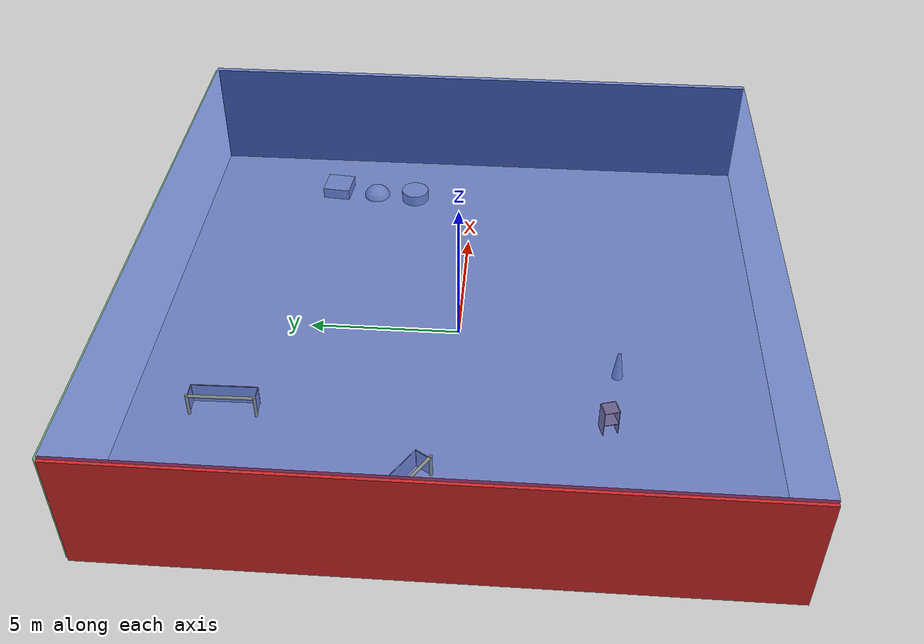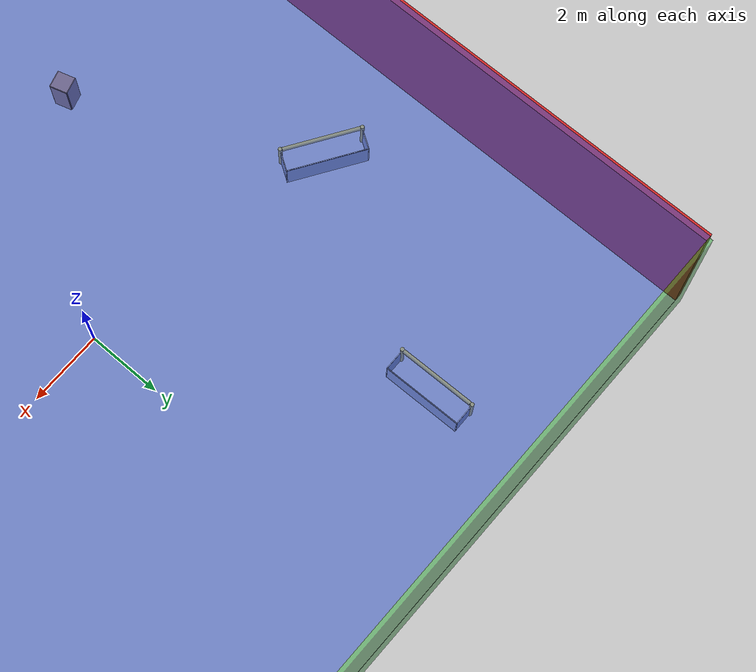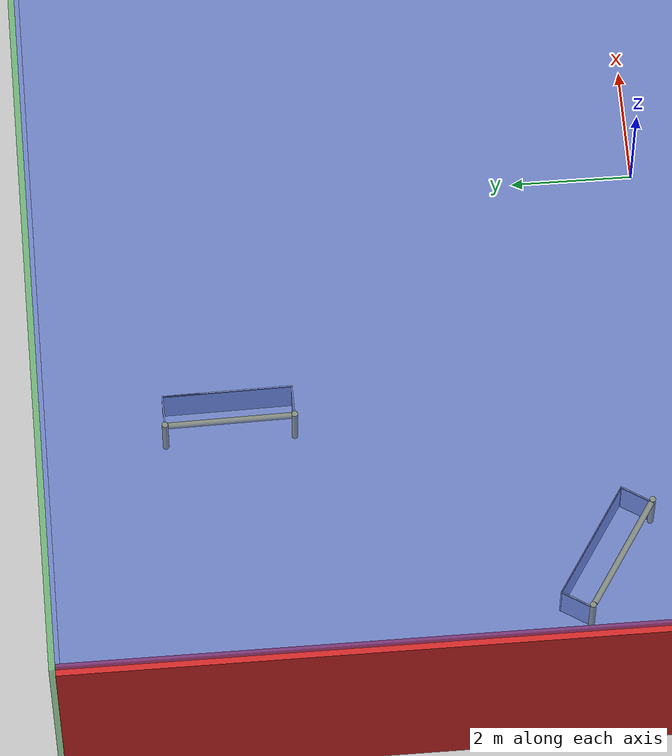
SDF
<sdf version="1.4">
 <world name="default">
  <physics type="ode">
   <max_step_size>0.001</max_step_size>
   <real_time_factor>1</real_time_factor>
   <real_time_update_rate>1000</real_time_update_rate>
   <gravity>0 0 -9.8</gravity>
  </physics>
  <scene><ambient>0.4 0.4 0.4 1</ambient><background>0.7 0.7 0.7 1</background><shadows>1</shadows></scene>
  <model name="Surrounding">
   <static>1</static>
   <link name="Ceiling">
    <collision name="Ceiling_Collision"><geometry><box><size>20 20 0.1</size></box></geometry></collision>
    <visual name="Ceiling_Visual">
     <geometry><box><size>20 20 0.1</size></box></geometry>
     <material>
      <script><uri>file://media/materials/scripts/gazebo.material</uri><name>Gazebo/BlueTransparent</name></script>
     </material>
    </visual>
    <pose>0 0 4.05 0 0 0</pose>
   </link>
   <link name="Wall_South">
    <collision name="Wall_South_Collision">
     <geometry><box><size>20 0 4</size></box></geometry>
     <pose>0 0 2 0 -0 0</pose>
    </collision>
    <visual name="Wall_South_Visual">
     <pose>0 0 2 0 -0 0</pose>
     <geometry><box><size>20 0 4</size></box></geometry>
     <material>
      <script><uri>file://media/materials/scripts/gazebo.material</uri><name>Gazebo/GreenTransparent</name></script>
     </material>
    </visual>
    <velocity_decay><linear>0</linear><angular>0</angular></velocity_decay>
    <pose>0 -10 0 0 -0 0</pose>
   </link>
   <link name="Wall_East">
    <collision name="Wall_21_Collision">
     <geometry><box><size>20 0 4</size></box></geometry>
     <pose>0 0 2 0 -0 0</pose>
    </collision>
    <visual name="Wall_21_Visual">
     <pose>0 0 2 0 -0 0</pose>
     <geometry><box><size>20 0 4</size></box></geometry>
     <material>
      <script><uri>file://media/materials/scripts/gazebo.material</uri><name>Gazebo/DarkGrey</name></script>
     </material>
    </visual>
    <velocity_decay><linear>0</linear><angular>0</angular></velocity_decay>
    <pose>10 0 0 0 -0 1.5708</pose>
   </link>
   <link name="Wall_North">
    <collision name="Wall_22_Collision">
     <geometry><box><size>20 0.2 4</size></box></geometry>
     <pose>0 0 2 0 -0 0</pose>
    </collision>
    <visual name="Wall_22_Visual">
     <pose>0 0 2 0 -0 0</pose>
     <geometry><box><size>20 0.2 4</size></box></geometry>
     <material>
      <script><uri>file://media/materials/scripts/gazebo.material</uri><name>Gazebo/GreenTransparent</name></script>
     </material>
    </visual>
    <velocity_decay><linear>0</linear><angular>0</angular></velocity_decay>
    <pose>0 10 0 0 -0 0</pose>
   </link>
   <link name="Wall_West">
    <collision name="Wall_23_Collision">
     <geometry><box><size>20 0.2 4</size></box></geometry>
     <pose>0 0 2 0 -0 0</pose>
    </collision>
    <visual name="Wall_23_Visual">
     <pose>0 0 2 0 -0 0</pose>
     <geometry><box><size>20 0.2 4</size></box></geometry>
     <material>
      <script><uri>file://media/materials/scripts/gazebo.material</uri><name>Gazebo/RedGlow</name></script>
     </material>
    </visual>
    <velocity_decay><linear>0</linear><angular>0</angular></velocity_decay>
    <pose>-10 0 0 0 0 -1.5708</pose>
   </link>
   <link name="Ground_link">
    <collision name="collision">
     <pose>0 0 .05 0 -0 0</pose>
     <geometry><box><size>20 20 0.1</size></box></geometry>
    </collision>
    <visual name="visual">
     <pose>0 0 .05 0 -0 0</pose>
     <geometry><box><size>20 20 0.1</size></box></geometry>
     <material>
      <script><uri>file://media/materials/scripts/gazebo.material</uri><name>Gazebo/CloudySky</name></script>
     </material>
    </visual>
   </link>
   <static>1</static>
  </model>
  <spherical_coordinates>
   <surface_model>EARTH_WGS84</surface_model>
   <latitude_deg>0</latitude_deg>
   <longitude_deg>0</longitude_deg>
   <elevation>0</elevation>
   <heading_deg>0</heading_deg>
  </spherical_coordinates>
  <light name="lightball_0" type="diffuse">
   <diffuse>0.8 0.8 0.8 1</diffuse>
   <specular>0.2 0.2 0.2 1</specular>
   <attenuation>
    <range>100</range>
    <constant>0.7</constant>
    <linear>0.01</linear>
    <quadratic>0.001</quadratic>
   </attenuation>
   <direction>-0.5 0.1 -0.9</direction>
   <pose>-0.814594767746 0.0238219363551 2.045425135 0 0 0</pose>
  </light>
  <light name="lightball_1" type="diffuse">
   <diffuse>0.8 0.8 0.8 1</diffuse>
   <specular>0.2 0.2 0.2 1</specular>
   <attenuation>
    <range>100</range>
    <constant>0.7</constant>
    <linear>0.01</linear>
    <quadratic>0.001</quadratic>
   </attenuation>
   <direction>-0.5 0.1 -0.9</direction>
   <pose>-2.10679338987 -6.66466033145 3.73951318862 0 0 0</pose>
  </light>
  <light name="lightball_2" type="diffuse">
   <diffuse>0.8 0.8 0.8 1</diffuse>
   <specular>0.2 0.2 0.2 1</specular>
   <attenuation>
    <range>100</range>
    <constant>0.7</constant>
    <linear>0.01</linear>
    <quadratic>0.001</quadratic>
   </attenuation>
   <direction>-0.5 0.1 -0.9</direction>
   <pose>-0.332686863404 -5.25240408525 0.826762983515 0 0 0</pose>
  </light>
  <light name="lightball_3" type="diffuse">
   <diffuse>0.8 0.8 0.8 1</diffuse>
   <specular>0.2 0.2 0.2 1</specular>
   <attenuation>
    <range>100</range>
    <constant>0.7</constant>
    <linear>0.01</linear>
    <quadratic>0.001</quadratic>
   </attenuation>
   <direction>-0.5 0.1 -0.9</direction>
   <pose>-1.30198274785 -0.217894606508 0.591039341767 0 0 0</pose>
  </light>
  <light name="lightball_4" type="diffuse">
   <diffuse>0.8 0.8 0.8 1</diffuse>
   <specular>0.2 0.2 0.2 1</specular>
   <attenuation>
    <range>100</range>
    <constant>0.7</constant>
    <linear>0.01</linear>
    <quadratic>0.001</quadratic>
   </attenuation>
   <direction>-0.5 0.1 -0.9</direction>
   <pose>-9.3070202398 8.7028517797 1.61411533593 0 0 0</pose>
  </light>
  <light name="lightball_5" type="diffuse">
   <diffuse>0.8 0.8 0.8 1</diffuse>
   <specular>0.2 0.2 0.2 1</specular>
   <attenuation>
    <range>100</range>
    <constant>0.7</constant>
    <linear>0.01</linear>
    <quadratic>0.001</quadratic>
   </attenuation>
   <direction>-0.5 0.1 -0.9</direction>
   <pose>-5.36714429417 -2.59605103186 3.11724542704 0 0 0</pose>
  </light>
  <light name="lightball_6" type="diffuse">
   <diffuse>0.8 0.8 0.8 1</diffuse>
   <specular>0.2 0.2 0.2 1</specular>
   <attenuation>
    <range>100</range>
    <constant>0.7</constant>
    <linear>0.01</linear>
    <quadratic>0.001</quadratic>
   </attenuation>
   <direction>-0.5 0.1 -0.9</direction>
   <pose>3.97877984891 6.43995730437 2.3910143064 0 0 0</pose>
  </light>
  <light name="lightball_7" type="diffuse">
   <diffuse>0.8 0.8 0.8 1</diffuse>
   <specular>0.2 0.2 0.2 1</specular>
   <attenuation>
    <range>100</range>
    <constant>0.7</constant>
    <linear>0.01</linear>
    <quadratic>0.001</quadratic>
   </attenuation>
   <direction>-0.5 0.1 -0.9</direction>
   <pose>8.09756440285 4.43646533895 3.86989781028 0 0 0</pose>
  </light>
  <include>
   <uri>model://robocup_3Dsim_goal</uri>
   <pose>-7.2704750695 0.930056775683 0 0 0 0.999748804341</pose>
  </include>
  <include><uri>model://cabinet</uri><pose>-4.19040154491 -4.86699676714 0 0 0 0.287835126401</pose></include>
  <include>
   <uri>model://robocup_3Dsim_goal</uri>
   <pose>-4.42506293171 7.00556847058 0 0 0 0.0150015121782</pose>
  </include>
  <include>
   <uri>model://construction_cone</uri>
   <pose>-1.84989280586 -5.21717687932 0 0 0 3.00013724449</pose>
  </include>
  <include>
   <uri>model://textured_shapes</uri>
   <pose>7.68096432147 3.71675071034 0 0 0 3.04639287497</pose>
  </include>
 </world>
</sdf>

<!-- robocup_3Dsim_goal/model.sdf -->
<sdf version="1.5">
  <model name="robocup_3d_goal">
    <static>true</static>
    <link name="left_post">
      <pose>0 1.05 0.45 0 0 0</pose>
      <collision name="collision">
        <geometry>
          <cylinder>
            <radius>0.05</radius>
            <length>0.9</length>
          </cylinder>
        </geometry>
      </collision>
      <visual name="visual">
        <geometry>
          <cylinder>
            <radius>0.05</radius>
            <length>0.9</length>
          </cylinder>
        </geometry>
        <material>
          <script>
            <uri>file://media/materials/scripts/gazebo.material</uri>
            <name>Gazebo/ZincYellow</name>
          </script>
        </material>
      </visual>
    </link>
    <link name="left_support_horiz_lower">
      <pose>0.30 1.05 0.01 0 0 0</pose>
      <collision name="collision">
        <geometry>
          <box>
            <size>0.50 0.02 0.02</size>
          </box>
        </geometry>
      </collision>
      <visual name="visual">
        <geometry>
          <box>
            <size>0.50 0.02 0.02</size>
          </box>
        </geometry>
        <material>
          <script>
            <uri>file://media/materials/scripts/gazebo.material</uri>
            <name>Gazebo/White</name>
          </script>
        </material>
      </visual>
    </link>
    <link name="left_support_horiz_upper">
      <pose>0.30 1.05 0.79 0 0 0</pose>
      <collision name="collision">
        <geometry>
          <box>
            <size>0.50 0.02 0.02</size>
          </box>
        </geometry>
      </collision>
      <visual name="visual">
        <geometry>
          <box>
            <size>0.50 0.02 0.02</size>
          </box>
        </geometry>
        <material>
          <script>
            <uri>file://media/materials/scripts/gazebo.material</uri>
            <name>Gazebo/White</name>
          </script>
        </material>
      </visual>
    </link>
    <link name="left_support_vertical">
      <pose>0.56 1.05 0.4 0 1.5708 0</pose>
      <collision name="collision">
        <geometry>
          <box>
            <size>0.80 0.02 0.02</size>
          </box>
        </geometry>
      </collision>
      <visual name="visual">
        <geometry>
          <box>
            <size>0.80 0.02 0.02</size>
          </box>
        </geometry>
        <material>
          <script>
            <uri>file://media/materials/scripts/gazebo.material</uri>
            <name>Gazebo/White</name>
          </script>
        </material>
      </visual>
    </link>
    <link name="right_support_horiz_lower">
      <pose>0.30 -1.05 0.01 0 0 0</pose>
      <collision name="collision">
        <geometry>
          <box>
            <size>0.50 0.02 0.02</size>
          </box>
        </geometry>
      </collision>
      <visual name="visual">
        <geometry>
          <box>
            <size>0.50 0.02 0.02</size>
          </box>
        </geometry>
        <material>
          <script>
            <uri>file://media/materials/scripts/gazebo.material</uri>
            <name>Gazebo/White</name>
          </script>
        </material>
      </visual>
    </link>
    <link name="right_support_horiz_upper">
      <pose>0.30 -1.05 0.79 0 0 0</pose>
      <collision name="collision">
        <geometry>
          <box>
            <size>0.50 0.02 0.02</size>
          </box>
        </geometry>
      </collision>
      <visual name="visual">
        <geometry>
          <box>
            <size>0.50 0.02 0.02</size>
          </box>
        </geometry>
        <material>
          <script>
            <uri>file://media/materials/scripts/gazebo.material</uri>
            <name>Gazebo/White</name>
          </script>
        </material>
      </visual>
    </link>
    <link name="right_support_vertical">
      <pose>0.56 -1.05 0.4 0 1.5708 0</pose>
      <collision name="collision">
        <geometry>
          <box>
            <size>0.80 0.02 0.02</size>
          </box>
        </geometry>
      </collision>
      <visual name="visual">
        <geometry>
          <box>
            <size>0.80 0.02 0.02</size>
          </box>
        </geometry>
        <material>
          <script>
            <uri>file://media/materials/scripts/gazebo.material</uri>
            <name>Gazebo/White</name>
          </script>
        </material>
      </visual>
    </link>
    <link name="center_support_horiz_lower">
      <pose>0.56 0 0.01 0 1.5708 0</pose>
      <collision name="collision">
        <geometry>
          <box>
            <size>0.02 2.08 0.02</size>
          </box>
        </geometry>
      </collision>
      <visual name="visual">
        <geometry>
          <box>
            <size>0.02 2.08 0.02</size>
          </box>
        </geometry>
        <material>
          <script>
            <uri>file://media/materials/scripts/gazebo.material</uri>
            <name>Gazebo/White</name>
          </script>
        </material>
      </visual>
    </link>
    <link name="center_support_horiz_upper">
      <pose>0.56 0 0.79 0 1.5708 0</pose>
      <collision name="collision">
        <geometry>
          <box>
            <size>0.02 2.08 0.02</size>
          </box>
        </geometry>
      </collision>
      <visual name="visual">
        <geometry>
          <box>
            <size>0.02 2.08 0.02</size>
          </box>
        </geometry>
        <material>
          <script>
            <uri>file://media/materials/scripts/gazebo.material</uri>
            <name>Gazebo/White</name>
          </script>
        </material>
      </visual>
    </link>
    <link name="right_post">
      <pose>0 -1.05 0.45 0 0 0</pose>
      <collision name="collision">
        <geometry>
          <cylinder>
            <radius>0.05</radius>
            <length>0.9</length>
          </cylinder>
        </geometry>
      </collision>
      <visual name="visual">
        <geometry>
          <cylinder>
            <radius>0.05</radius>
            <length>0.9</length>
          </cylinder>
        </geometry>
        <material>
          <script>
            <uri>file://media/materials/scripts/gazebo.material</uri>
            <name>Gazebo/ZincYellow</name>
          </script>
        </material>
      </visual>
    </link>
    <link name="crossbar">
      <pose>0 0 0.85 1.57 1.57 0</pose>
      <collision name="collision">
        <geometry>
          <cylinder>
            <radius>0.05</radius>
            <length>2.0</length>
          </cylinder>
        </geometry>
      </collision>
      <visual name="visual">
        <geometry>
          <cylinder>
            <radius>0.05</radius>
            <length>2.0</length>
          </cylinder>
        </geometry>
        <material>
          <script>
            <uri>file://media/materials/scripts/gazebo.material</uri>
            <name>Gazebo/ZincYellow</name>
          </script>
        </material>
      </visual>
    </link>
    <link name="center_net">
      <pose>0.56 0 0.40 0 0 0</pose>
      <collision name="collision">
        <geometry>
          <box>
            <size>0.01 2.1 0.80</size>
          </box>
        </geometry>
      </collision>
      <visual name="visual">
        <geometry>
          <box>
            <size>0.01 2.1 0.80</size>
          </box>
        </geometry>
        <material>
          <script>
            <uri>model://../model_source/models/robocup09_spl_field/materials/scripts/</uri>
            <uri>model://../model_source/models/robocup09_spl_field/materials/textures/</uri>
            <name>RoboCup/Net</name>
          </script>
        </material>
      </visual>
    </link>
    <link name="left_net">
      <pose>0.30 1.05 0.40 0 0 0</pose>
      <collision name="collision">
        <geometry>
          <box>
            <size>0.50 0.01 0.76</size>
          </box>
        </geometry>
      </collision>
      <visual name="visual">
        <geometry>
          <box>
            <size>0.50 0.01 0.76</size>
          </box>
        </geometry>
        <material>
          <script>
            <uri>model://../model_source/models/robocup09_spl_field/materials/scripts/</uri>
            <uri>model://../model_source/models/robocup09_spl_field/materials/textures/</uri>
            <name>RoboCup/Net</name>
          </script>
        </material>
      </visual>
    </link>
    <link name="right_net">
      <pose>0.30 -1.05 0.40 0 0 0</pose>
      <collision name="collision">
        <geometry>
          <box>
            <size>0.50 0.01 0.76</size>
          </box>
        </geometry>
      </collision>
      <visual name="visual">
        <geometry>
          <box>
            <size>0.50 0.01 0.76</size>
          </box>
        </geometry>
        <material>
          <script>
            <uri>model://../model_source/models/robocup09_spl_field/materials/scripts/</uri>
            <uri>model://../model_source/models/robocup09_spl_field/materials/textures/</uri>
            <name>RoboCup/Net</name>
          </script>
        </material>
      </visual>
    </link>
  </model>
</sdf>

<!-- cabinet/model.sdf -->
<sdf version="1.5">
  <model name="cabinet">
    <static>true</static>
    <link name="cabinet_bottom_plate">
      <inertial>
        <pose>0 0 -1 0 0 0</pose>
        <inertia>
          <ixx>2.050000</ixx>
          <ixy>0</ixy>
          <ixz>0</ixz>
          <iyy>2.050000</iyy>
          <iyz>0</iyz>
          <izz>2.050000</izz>
        </inertia>
        <mass>25.000000</mass>
      </inertial>
      <collision name="cabinet_bottom_plate_geom">
        <pose>0 0 0.010000 0 0 0</pose>
        <geometry>
          <box>
            <size>0.450000 0.450000 0.020000</size>
          </box>
        </geometry>
      </collision>
      <visual name="cabinet_bottom_plate_geom_visual">
        <pose>0 0 0.010000 0 0 0</pose>
        <geometry>
          <box>
            <size>0.450000 0.450000 0.020000</size>
          </box>
        </geometry>
        <material>
          <script>
            <uri>model://media/materials/scripts/gazebo.material</uri>
            <name>Gazebo/Wood</name>
          </script>
        </material>
      </visual>
      <collision name="cabinet_bottom_plate_geom_cabinet_back_plate">
        <pose>0.235000 0 0.510000 0 0 0</pose>
        <geometry>
          <box>
            <size>0.020000 0.450000 1.020000</size>
          </box>
        </geometry>
      </collision>
      <visual name="cabinet_bottom_plate_geom_cabinet_back_plate_visual">
        <pose>0.235000 0 0.510000 0 0 0</pose>
        <geometry>
          <box>
            <size>0.020000 0.450000 1.020000</size>
          </box>
        </geometry>
        <material>
          <script>
            <uri>model://media/materials/scripts/gazebo.material</uri>
            <name>Gazebo/Wood</name>
          </script>
        </material>
      </visual>
      <collision name="cabinet_bottom_plate_geom_cabinet_left_plate">
        <pose>0 0.235000 0.510000 0 0 0</pose>
        <geometry>
          <box>
            <size>0.450000 0.020000 1.020000</size>
          </box>
        </geometry>
      </collision>
      <visual name="cabinet_bottom_plate_geom_cabinet_left_plate_visual">
        <pose>0 0.235000 0.510000 0 0 0</pose>
        <geometry>
          <box>
            <size>0.450000 0.020000 1.020000</size>
          </box>
        </geometry>
        <material>
          <script>
            <uri>model://media/materials/scripts/gazebo.material</uri>
            <name>Gazebo/Wood</name>
          </script>
        </material>
      </visual>
      <collision name="cabinet_bottom_plate_geom_cabinet_middle_plate">
        <pose>0 0 0.510000 0 0 0</pose>
        <geometry>
          <box>
            <size>0.450000 0.450000 0.020000</size>
          </box>
        </geometry>
      </collision>
      <visual name="cabinet_bottom_plate_geom_cabinet_middle_plate_visual">
        <pose>0 0 0.510000 0 0 0</pose>
        <geometry>
          <box>
            <size>0.450000 0.450000 0.020000</size>
          </box>
        </geometry>
        <material>
          <script>
            <uri>model://media/materials/scripts/gazebo.material</uri>
            <name>Gazebo/Wood</name>
          </script>
        </material>
      </visual>
      <collision name="cabinet_bottom_plate_geom_cabinet_right_plate">
        <pose>0 -0.235000 0.510000 0 0 0</pose>
        <geometry>
          <box>
            <size>0.450000 0.020000 1.020000</size>
          </box>
        </geometry>
      </collision>
      <visual name="cabinet_bottom_plate_geom_cabinet_right_plate_visual">
        <pose>0 -0.235000 0.510000 0 0 0</pose>
        <geometry>
          <box>
            <size>0.450000 0.020000 1.020000</size>
          </box>
        </geometry>
        <material>
          <script>
            <uri>model://media/materials/scripts/gazebo.material</uri>
            <name>Gazebo/Wood</name>
          </script>
        </material>
      </visual>
      <collision name="cabinet_bottom_plate_geom_cabinet_top_plate">
        <pose>0 0 1.010000 0 0 0</pose>
        <geometry>
          <box>
            <size>0.450000 0.450000 0.020000</size>
          </box>
        </geometry>
      </collision>
      <visual name="cabinet_bottom_plate_geom_cabinet_top_plate_visual">
        <pose>0 0 1.010000 0 0 0</pose>
        <geometry>
          <box>
            <size>0.450000 0.450000 0.020000</size>
          </box>
        </geometry>
        <material>
          <script>
            <uri>model://media/materials/scripts/gazebo.material</uri>
            <name>Gazebo/Wood</name>
          </script>
        </material>
      </visual>
    </link>
  </model>
</sdf>

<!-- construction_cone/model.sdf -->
<sdf version="1.5">
  <model name="Construction Cone">
    <link name="link">
      <collision name="collision">
        <geometry>
          <mesh>
            <scale>10 10 10</scale>
            <uri>file://isr-testbed/construction_cone/meshes/construction_cone.dae</uri>
          </mesh>
        </geometry>
      </collision>
      <visual name="visual">
        <geometry>
          <mesh>
            <scale>10 10 10</scale>
            <uri>file://isr-testbed/construction_cone/meshes/construction_cone.dae</uri>
          </mesh>
        </geometry>
      </visual>
    </link>
  </model>
</sdf>

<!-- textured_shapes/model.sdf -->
<sdf version="1.6">
  <model name="textured_shapes">
    <pose>0 0 0.5 0 0 0</pose>
    <link name="box">
      <pose>0 -1.5 0 0 0 0</pose>
      <collision name="collision">
        <geometry>
          <box>
            <size>1 1 1</size>
          </box>
        </geometry>
      </collision>
      <visual name="visual">
        <geometry>
          <box>
            <size>1 1 1</size>
          </box>
        </geometry>
        <material>
          <script>
            <uri>model://../model_source/models/textured_shapes/materials/scripts</uri>
            <uri>model://../model_source/models/textured_shapes/materials/textures</uri>
            <name>TexturedShape/Squares</name>
          </script>
        </material>
      </visual>
    </link>
    <link name="sphere">
      <collision name="collision">
        <geometry>
          <sphere>
            <radius>0.5</radius>
          </sphere>
        </geometry>
      </collision>
      <visual name="visual">
        <geometry>
          <sphere>
            <radius>0.5</radius>
          </sphere>
        </geometry>
        <material>
          <script>
            <uri>model://../model_source/models/textured_shapes/materials/scripts</uri>
            <uri>model://../model_source/models/textured_shapes/materials/textures</uri>
            <name>TexturedShape/Squares</name>
          </script>
        </material>
      </visual>
    </link>
    <link name="cylinder">
      <pose>0 1.5 0 0 0 0</pose>
      <collision name="collision">
        <geometry>
          <cylinder>
            <radius>0.5</radius>
            <length>1</length>
          </cylinder>
        </geometry>
      </collision>
      <visual name="visual">
        <geometry>
          <cylinder>
            <radius>0.5</radius>
            <length>1</length>
          </cylinder>
        </geometry>
        <material>
          <script>
            <uri>model://../model_source/models/textured_shapes/materials/scripts</uri>
            <uri>model://../model_source/models/textured_shapes/materials/textures</uri>
            <name>TexturedShape/Squares</name>
          </script>
        </material>
      </visual>
    </link>
  </model>
</sdf>
